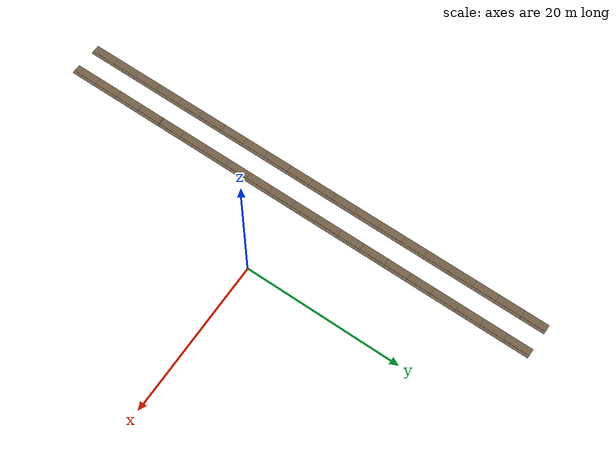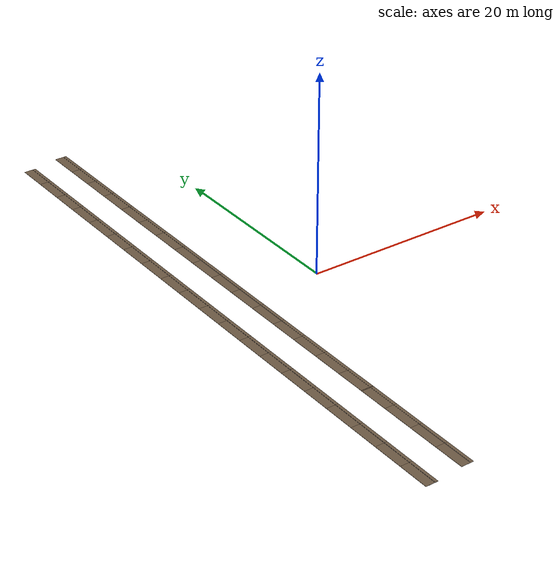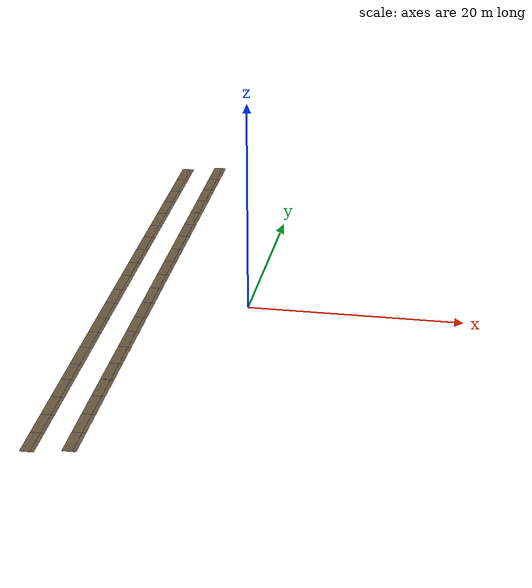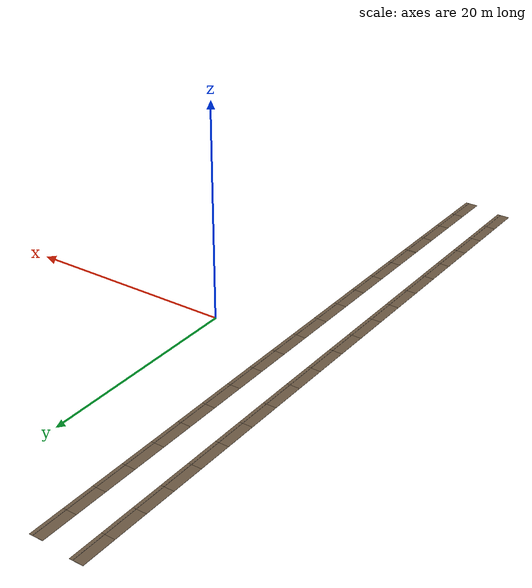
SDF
<sdf version="1.9">
 <world name="orchard_10x41">
  <model name="understory_r1">
   <static>true</static>
   <link name="link">
    <visual name="soil_1">
     <pose>-12.250 -29.450 0.925 0.0003 0.0000 0.0000</pose>
     <geometry><box><size>1.2000 3.2240 0.0300</size></box></geometry>
     <material>
      <ambient>0.400 0.330 0.250 1</ambient>
      <diffuse>0.440 0.363 0.275 1</diffuse>
      <specular>0.120 0.099 0.075 1</specular>
     </material>
     <plugin filename="gz-sim-label-system" name="gz::sim::systems::Label"><label>66</label></plugin>
    </visual>
    <visual name="soil_2">
     <pose>-12.250 -26.350 0.927 0.0007 0.0000 0.0000</pose>
     <geometry><box><size>1.2000 3.2240 0.0300</size></box></geometry>
     <material>
      <ambient>0.400 0.330 0.250 1</ambient>
      <diffuse>0.440 0.363 0.275 1</diffuse>
      <specular>0.120 0.099 0.075 1</specular>
     </material>
     <plugin filename="gz-sim-label-system" name="gz::sim::systems::Label"><label>66</label></plugin>
    </visual>
    <visual name="soil_3">
     <pose>-12.250 -23.250 0.929 0.0005 0.0000 0.0000</pose>
     <geometry><box><size>1.2000 3.2240 0.0300</size></box></geometry>
     <material>
      <ambient>0.400 0.330 0.250 1</ambient>
      <diffuse>0.440 0.363 0.275 1</diffuse>
      <specular>0.120 0.099 0.075 1</specular>
     </material>
     <plugin filename="gz-sim-label-system" name="gz::sim::systems::Label"><label>66</label></plugin>
    </visual>
    <visual name="soil_4">
     <pose>-12.250 -20.150 0.930 0.0001 0.0000 0.0000</pose>
     <geometry><box><size>1.2000 3.2240 0.0300</size></box></geometry>
     <material>
      <ambient>0.400 0.330 0.250 1</ambient>
      <diffuse>0.440 0.363 0.275 1</diffuse>
      <specular>0.120 0.099 0.075 1</specular>
     </material>
     <plugin filename="gz-sim-label-system" name="gz::sim::systems::Label"><label>66</label></plugin>
    </visual>
    <visual name="soil_5">
     <pose>-12.250 -17.050 0.930 0.0001 0.0000 0.0000</pose>
     <geometry><box><size>1.2000 3.2240 0.0300</size></box></geometry>
     <material>
      <ambient>0.400 0.330 0.250 1</ambient>
      <diffuse>0.440 0.363 0.275 1</diffuse>
      <specular>0.120 0.099 0.075 1</specular>
     </material>
     <plugin filename="gz-sim-label-system" name="gz::sim::systems::Label"><label>66</label></plugin>
    </visual>
    <visual name="soil_6">
     <pose>-12.250 -13.950 0.930 -0.0003 0.0000 0.0000</pose>
     <geometry><box><size>1.2000 3.2240 0.0300</size></box></geometry>
     <material>
      <ambient>0.400 0.330 0.250 1</ambient>
      <diffuse>0.440 0.363 0.275 1</diffuse>
      <specular>0.120 0.099 0.075 1</specular>
     </material>
     <plugin filename="gz-sim-label-system" name="gz::sim::systems::Label"><label>66</label></plugin>
    </visual>
    <visual name="soil_7">
     <pose>-12.250 -10.850 0.929 -0.0003 0.0000 0.0000</pose>
     <geometry><box><size>1.2000 3.2240 0.0300</size></box></geometry>
     <material>
      <ambient>0.400 0.330 0.250 1</ambient>
      <diffuse>0.440 0.363 0.275 1</diffuse>
      <specular>0.120 0.099 0.075 1</specular>
     </material>
     <plugin filename="gz-sim-label-system" name="gz::sim::systems::Label"><label>66</label></plugin>
    </visual>
    <visual name="soil_8">
     <pose>-12.250 -7.750 0.928 -0.0001 0.0000 0.0000</pose>
     <geometry><box><size>1.2000 3.2240 0.0300</size></box></geometry>
     <material>
      <ambient>0.400 0.330 0.250 1</ambient>
      <diffuse>0.440 0.363 0.275 1</diffuse>
      <specular>0.120 0.099 0.075 1</specular>
     </material>
     <plugin filename="gz-sim-label-system" name="gz::sim::systems::Label"><label>66</label></plugin>
    </visual>
    <visual name="soil_9">
     <pose>-12.250 -4.650 0.928 -0.0005 0.0000 0.0000</pose>
     <geometry><box><size>1.2000 3.2240 0.0300</size></box></geometry>
     <material>
      <ambient>0.400 0.330 0.250 1</ambient>
      <diffuse>0.440 0.363 0.275 1</diffuse>
      <specular>0.120 0.099 0.075 1</specular>
     </material>
     <plugin filename="gz-sim-label-system" name="gz::sim::systems::Label"><label>66</label></plugin>
    </visual>
    <visual name="soil_10">
     <pose>-12.250 -1.550 0.926 -0.0005 0.0000 0.0000</pose>
     <geometry><box><size>1.2000 3.2240 0.0300</size></box></geometry>
     <material>
      <ambient>0.400 0.330 0.250 1</ambient>
      <diffuse>0.440 0.363 0.275 1</diffuse>
      <specular>0.120 0.099 0.075 1</specular>
     </material>
     <plugin filename="gz-sim-label-system" name="gz::sim::systems::Label"><label>66</label></plugin>
    </visual>
    <visual name="soil_11">
     <pose>-12.250 1.550 0.925 -0.0002 0.0000 0.0000</pose>
     <geometry><box><size>1.2000 3.2240 0.0300</size></box></geometry>
     <material>
      <ambient>0.400 0.330 0.250 1</ambient>
      <diffuse>0.440 0.363 0.275 1</diffuse>
      <specular>0.120 0.099 0.075 1</specular>
     </material>
     <plugin filename="gz-sim-label-system" name="gz::sim::systems::Label"><label>66</label></plugin>
    </visual>
    <visual name="soil_12">
     <pose>-12.250 4.650 0.924 -0.0001 0.0000 0.0000</pose>
     <geometry><box><size>1.2000 3.2240 0.0300</size></box></geometry>
     <material>
      <ambient>0.400 0.330 0.250 1</ambient>
      <diffuse>0.440 0.363 0.275 1</diffuse>
      <specular>0.120 0.099 0.075 1</specular>
     </material>
     <plugin filename="gz-sim-label-system" name="gz::sim::systems::Label"><label>66</label></plugin>
    </visual>
    <visual name="soil_13">
     <pose>-12.250 7.750 0.924 -0.0001 0.0000 0.0000</pose>
     <geometry><box><size>1.2000 3.2240 0.0300</size></box></geometry>
     <material>
      <ambient>0.400 0.330 0.250 1</ambient>
      <diffuse>0.440 0.363 0.275 1</diffuse>
      <specular>0.120 0.099 0.075 1</specular>
     </material>
     <plugin filename="gz-sim-label-system" name="gz::sim::systems::Label"><label>66</label></plugin>
    </visual>
    <visual name="soil_14">
     <pose>-12.250 10.850 0.922 -0.0010 0.0000 0.0000</pose>
     <geometry><box><size>1.2000 3.2240 0.0300</size></box></geometry>
     <material>
      <ambient>0.400 0.330 0.250 1</ambient>
      <diffuse>0.440 0.363 0.275 1</diffuse>
      <specular>0.120 0.099 0.075 1</specular>
     </material>
     <plugin filename="gz-sim-label-system" name="gz::sim::systems::Label"><label>66</label></plugin>
    </visual>
    <visual name="soil_15">
     <pose>-12.250 13.950 0.918 -0.0015 0.0000 0.0000</pose>
     <geometry><box><size>1.2000 3.2240 0.0300</size></box></geometry>
     <material>
      <ambient>0.400 0.330 0.250 1</ambient>
      <diffuse>0.440 0.363 0.275 1</diffuse>
      <specular>0.120 0.099 0.075 1</specular>
     </material>
     <plugin filename="gz-sim-label-system" name="gz::sim::systems::Label"><label>66</label></plugin>
    </visual>
    <visual name="soil_16">
     <pose>-12.250 17.050 0.915 -0.0008 0.0000 0.0000</pose>
     <geometry><box><size>1.2000 3.2240 0.0300</size></box></geometry>
     <material>
      <ambient>0.400 0.330 0.250 1</ambient>
      <diffuse>0.440 0.363 0.275 1</diffuse>
      <specular>0.120 0.099 0.075 1</specular>
     </material>
     <plugin filename="gz-sim-label-system" name="gz::sim::systems::Label"><label>66</label></plugin>
    </visual>
    <visual name="soil_17">
     <pose>-12.250 20.150 0.913 -0.0001 0.0000 0.0000</pose>
     <geometry><box><size>1.2000 3.2240 0.0300</size></box></geometry>
     <material>
      <ambient>0.400 0.330 0.250 1</ambient>
      <diffuse>0.440 0.363 0.275 1</diffuse>
      <specular>0.120 0.099 0.075 1</specular>
     </material>
     <plugin filename="gz-sim-label-system" name="gz::sim::systems::Label"><label>66</label></plugin>
    </visual>
    <visual name="soil_18">
     <pose>-12.250 23.250 0.913 0.0003 0.0000 0.0000</pose>
     <geometry><box><size>1.2000 3.2240 0.0300</size></box></geometry>
     <material>
      <ambient>0.400 0.330 0.250 1</ambient>
      <diffuse>0.440 0.363 0.275 1</diffuse>
      <specular>0.120 0.099 0.075 1</specular>
     </material>
     <plugin filename="gz-sim-label-system" name="gz::sim::systems::Label"><label>66</label></plugin>
    </visual>
    <visual name="soil_19">
     <pose>-12.250 26.350 0.915 0.0006 0.0000 0.0000</pose>
     <geometry><box><size>1.2000 3.2240 0.0300</size></box></geometry>
     <material>
      <ambient>0.400 0.330 0.250 1</ambient>
      <diffuse>0.440 0.363 0.275 1</diffuse>
      <specular>0.120 0.099 0.075 1</specular>
     </material>
     <plugin filename="gz-sim-label-system" name="gz::sim::systems::Label"><label>66</label></plugin>
    </visual>
    <visual name="soil_20">
     <pose>-12.250 29.450 0.916 0.0001 0.0000 0.0000</pose>
     <geometry><box><size>1.2000 3.2240 0.0300</size></box></geometry>
     <material>
      <ambient>0.400 0.330 0.250 1</ambient>
      <diffuse>0.440 0.363 0.275 1</diffuse>
      <specular>0.120 0.099 0.075 1</specular>
     </material>
     <plugin filename="gz-sim-label-system" name="gz::sim::systems::Label"><label>66</label></plugin>
    </visual>
    <visual name="drip_21">
     <pose>-11.970 -29.450 0.955 1.5711 0.0000 0.0000</pose>
     <geometry><cylinder><radius>0.0110</radius><length>3.1620</length></cylinder></geometry>
     <material>
      <ambient>0.100 0.100 0.110 1</ambient>
      <diffuse>0.110 0.110 0.121 1</diffuse>
      <specular>0.030 0.030 0.033 1</specular>
     </material>
     <plugin filename="gz-sim-label-system" name="gz::sim::systems::Label"><label>67</label></plugin>
    </visual>
    <visual name="drip_22">
     <pose>-11.970 -26.350 0.957 1.5715 0.0000 0.0000</pose>
     <geometry><cylinder><radius>0.0110</radius><length>3.1620</length></cylinder></geometry>
     <material>
      <ambient>0.100 0.100 0.110 1</ambient>
      <diffuse>0.110 0.110 0.121 1</diffuse>
      <specular>0.030 0.030 0.033 1</specular>
     </material>
     <plugin filename="gz-sim-label-system" name="gz::sim::systems::Label"><label>67</label></plugin>
    </visual>
    <visual name="drip_23">
     <pose>-11.970 -23.250 0.959 1.5713 0.0000 0.0000</pose>
     <geometry><cylinder><radius>0.0110</radius><length>3.1620</length></cylinder></geometry>
     <material>
      <ambient>0.100 0.100 0.110 1</ambient>
      <diffuse>0.110 0.110 0.121 1</diffuse>
      <specular>0.030 0.030 0.033 1</specular>
     </material>
     <plugin filename="gz-sim-label-system" name="gz::sim::systems::Label"><label>67</label></plugin>
    </visual>
    <visual name="drip_24">
     <pose>-11.970 -20.150 0.960 1.5709 0.0000 0.0000</pose>
     <geometry><cylinder><radius>0.0110</radius><length>3.1620</length></cylinder></geometry>
     <material>
      <ambient>0.100 0.100 0.110 1</ambient>
      <diffuse>0.110 0.110 0.121 1</diffuse>
      <specular>0.030 0.030 0.033 1</specular>
     </material>
     <plugin filename="gz-sim-label-system" name="gz::sim::systems::Label"><label>67</label></plugin>
    </visual>
    <visual name="drip_25">
     <pose>-11.970 -17.050 0.960 1.5709 0.0000 0.0000</pose>
     <geometry><cylinder><radius>0.0110</radius><length>3.1620</length></cylinder></geometry>
     <material>
      <ambient>0.100 0.100 0.110 1</ambient>
      <diffuse>0.110 0.110 0.121 1</diffuse>
      <specular>0.030 0.030 0.033 1</specular>
     </material>
     <plugin filename="gz-sim-label-system" name="gz::sim::systems::Label"><label>67</label></plugin>
    </visual>
    <visual name="drip_26">
     <pose>-11.970 -13.950 0.960 1.5705 0.0000 0.0000</pose>
     <geometry><cylinder><radius>0.0110</radius><length>3.1620</length></cylinder></geometry>
     <material>
      <ambient>0.100 0.100 0.110 1</ambient>
      <diffuse>0.110 0.110 0.121 1</diffuse>
      <specular>0.030 0.030 0.033 1</specular>
     </material>
     <plugin filename="gz-sim-label-system" name="gz::sim::systems::Label"><label>67</label></plugin>
    </visual>
    <visual name="drip_27">
     <pose>-11.970 -10.850 0.959 1.5705 0.0000 0.0000</pose>
     <geometry><cylinder><radius>0.0110</radius><length>3.1620</length></cylinder></geometry>
     <material>
      <ambient>0.100 0.100 0.110 1</ambient>
      <diffuse>0.110 0.110 0.121 1</diffuse>
      <specular>0.030 0.030 0.033 1</specular>
     </material>
     <plugin filename="gz-sim-label-system" name="gz::sim::systems::Label"><label>67</label></plugin>
    </visual>
    <visual name="drip_28">
     <pose>-11.970 -7.750 0.958 1.5707 0.0000 0.0000</pose>
     <geometry><cylinder><radius>0.0110</radius><length>3.1620</length></cylinder></geometry>
     <material>
      <ambient>0.100 0.100 0.110 1</ambient>
      <diffuse>0.110 0.110 0.121 1</diffuse>
      <specular>0.030 0.030 0.033 1</specular>
     </material>
     <plugin filename="gz-sim-label-system" name="gz::sim::systems::Label"><label>67</label></plugin>
    </visual>
    <visual name="drip_29">
     <pose>-11.970 -4.650 0.958 1.5703 0.0000 0.0000</pose>
     <geometry><cylinder><radius>0.0110</radius><length>3.1620</length></cylinder></geometry>
     <material>
      <ambient>0.100 0.100 0.110 1</ambient>
      <diffuse>0.110 0.110 0.121 1</diffuse>
      <specular>0.030 0.030 0.033 1</specular>
     </material>
     <plugin filename="gz-sim-label-system" name="gz::sim::systems::Label"><label>67</label></plugin>
    </visual>
    <visual name="drip_30">
     <pose>-11.970 -1.550 0.956 1.5703 0.0000 0.0000</pose>
     <geometry><cylinder><radius>0.0110</radius><length>3.1620</length></cylinder></geometry>
     <material>
      <ambient>0.100 0.100 0.110 1</ambient>
      <diffuse>0.110 0.110 0.121 1</diffuse>
      <specular>0.030 0.030 0.033 1</specular>
     </material>
     <plugin filename="gz-sim-label-system" name="gz::sim::systems::Label"><label>67</label></plugin>
    </visual>
    <visual name="drip_31">
     <pose>-11.970 1.550 0.955 1.5706 0.0000 0.0000</pose>
     <geometry><cylinder><radius>0.0110</radius><length>3.1620</length></cylinder></geometry>
     <material>
      <ambient>0.100 0.100 0.110 1</ambient>
      <diffuse>0.110 0.110 0.121 1</diffuse>
      <specular>0.030 0.030 0.033 1</specular>
     </material>
     <plugin filename="gz-sim-label-system" name="gz::sim::systems::Label"><label>67</label></plugin>
    </visual>
    <visual name="drip_32">
     <pose>-11.970 4.650 0.954 1.5707 0.0000 0.0000</pose>
     <geometry><cylinder><radius>0.0110</radius><length>3.1620</length></cylinder></geometry>
     <material>
      <ambient>0.100 0.100 0.110 1</ambient>
      <diffuse>0.110 0.110 0.121 1</diffuse>
      <specular>0.030 0.030 0.033 1</specular>
     </material>
     <plugin filename="gz-sim-label-system" name="gz::sim::systems::Label"><label>67</label></plugin>
    </visual>
    <visual name="drip_33">
     <pose>-11.970 7.750 0.954 1.5707 0.0000 0.0000</pose>
     <geometry><cylinder><radius>0.0110</radius><length>3.1620</length></cylinder></geometry>
     <material>
      <ambient>0.100 0.100 0.110 1</ambient>
      <diffuse>0.110 0.110 0.121 1</diffuse>
      <specular>0.030 0.030 0.033 1</specular>
     </material>
     <plugin filename="gz-sim-label-system" name="gz::sim::systems::Label"><label>67</label></plugin>
    </visual>
    <visual name="drip_34">
     <pose>-11.970 10.850 0.952 1.5698 0.0000 0.0000</pose>
     <geometry><cylinder><radius>0.0110</radius><length>3.1620</length></cylinder></geometry>
     <material>
      <ambient>0.100 0.100 0.110 1</ambient>
      <diffuse>0.110 0.110 0.121 1</diffuse>
      <specular>0.030 0.030 0.033 1</specular>
     </material>
     <plugin filename="gz-sim-label-system" name="gz::sim::systems::Label"><label>67</label></plugin>
    </visual>
    <visual name="drip_35">
     <pose>-11.970 13.950 0.948 1.5693 0.0000 0.0000</pose>
     <geometry><cylinder><radius>0.0110</radius><length>3.1620</length></cylinder></geometry>
     <material>
      <ambient>0.100 0.100 0.110 1</ambient>
      <diffuse>0.110 0.110 0.121 1</diffuse>
      <specular>0.030 0.030 0.033 1</specular>
     </material>
     <plugin filename="gz-sim-label-system" name="gz::sim::systems::Label"><label>67</label></plugin>
    </visual>
    <visual name="drip_36">
     <pose>-11.970 17.050 0.945 1.5700 0.0000 0.0000</pose>
     <geometry><cylinder><radius>0.0110</radius><length>3.1620</length></cylinder></geometry>
     <material>
      <ambient>0.100 0.100 0.110 1</ambient>
      <diffuse>0.110 0.110 0.121 1</diffuse>
      <specular>0.030 0.030 0.033 1</specular>
     </material>
     <plugin filename="gz-sim-label-system" name="gz::sim::systems::Label"><label>67</label></plugin>
    </visual>
    <visual name="drip_37">
     <pose>-11.970 20.150 0.943 1.5707 0.0000 0.0000</pose>
     <geometry><cylinder><radius>0.0110</radius><length>3.1620</length></cylinder></geometry>
     <material>
      <ambient>0.100 0.100 0.110 1</ambient>
      <diffuse>0.110 0.110 0.121 1</diffuse>
      <specular>0.030 0.030 0.033 1</specular>
     </material>
     <plugin filename="gz-sim-label-system" name="gz::sim::systems::Label"><label>67</label></plugin>
    </visual>
    <visual name="drip_38">
     <pose>-11.970 23.250 0.943 1.5711 0.0000 0.0000</pose>
     <geometry><cylinder><radius>0.0110</radius><length>3.1620</length></cylinder></geometry>
     <material>
      <ambient>0.100 0.100 0.110 1</ambient>
      <diffuse>0.110 0.110 0.121 1</diffuse>
      <specular>0.030 0.030 0.033 1</specular>
     </material>
     <plugin filename="gz-sim-label-system" name="gz::sim::systems::Label"><label>67</label></plugin>
    </visual>
    <visual name="drip_39">
     <pose>-11.970 26.350 0.945 1.5714 0.0000 0.0000</pose>
     <geometry><cylinder><radius>0.0110</radius><length>3.1620</length></cylinder></geometry>
     <material>
      <ambient>0.100 0.100 0.110 1</ambient>
      <diffuse>0.110 0.110 0.121 1</diffuse>
      <specular>0.030 0.030 0.033 1</specular>
     </material>
     <plugin filename="gz-sim-label-system" name="gz::sim::systems::Label"><label>67</label></plugin>
    </visual>
    <visual name="drip_40">
     <pose>-11.970 29.450 0.946 1.5709 0.0000 0.0000</pose>
     <geometry><cylinder><radius>0.0110</radius><length>3.1620</length></cylinder></geometry>
     <material>
      <ambient>0.100 0.100 0.110 1</ambient>
      <diffuse>0.110 0.110 0.121 1</diffuse>
      <specular>0.030 0.030 0.033 1</specular>
     </material>
     <plugin filename="gz-sim-label-system" name="gz::sim::systems::Label"><label>67</label></plugin>
    </visual>
   </link>
  </model>
  <model name="understory_r2">
   <static>true</static>
   <link name="link">
    <visual name="soil_1">
     <pose>-8.750 -29.450 1.279 0.0003 0.0000 0.0000</pose>
     <geometry><box><size>1.2000 3.2240 0.0300</size></box></geometry>
     <material>
      <ambient>0.400 0.330 0.250 1</ambient>
      <diffuse>0.440 0.363 0.275 1</diffuse>
      <specular>0.120 0.099 0.075 1</specular>
     </material>
     <plugin filename="gz-sim-label-system" name="gz::sim::systems::Label"><label>66</label></plugin>
    </visual>
    <visual name="soil_2">
     <pose>-8.750 -26.350 1.281 0.0009 0.0000 0.0000</pose>
     <geometry><box><size>1.2000 3.2240 0.0300</size></box></geometry>
     <material>
      <ambient>0.400 0.330 0.250 1</ambient>
      <diffuse>0.440 0.363 0.275 1</diffuse>
      <specular>0.120 0.099 0.075 1</specular>
     </material>
     <plugin filename="gz-sim-label-system" name="gz::sim::systems::Label"><label>66</label></plugin>
    </visual>
    <visual name="soil_3">
     <pose>-8.750 -23.250 1.284 0.0006 0.0000 0.0000</pose>
     <geometry><box><size>1.2000 3.2240 0.0300</size></box></geometry>
     <material>
      <ambient>0.400 0.330 0.250 1</ambient>
      <diffuse>0.440 0.363 0.275 1</diffuse>
      <specular>0.120 0.099 0.075 1</specular>
     </material>
     <plugin filename="gz-sim-label-system" name="gz::sim::systems::Label"><label>66</label></plugin>
    </visual>
    <visual name="soil_4">
     <pose>-8.750 -20.150 1.285 0.0001 0.0000 0.0000</pose>
     <geometry><box><size>1.2000 3.2240 0.0300</size></box></geometry>
     <material>
      <ambient>0.400 0.330 0.250 1</ambient>
      <diffuse>0.440 0.363 0.275 1</diffuse>
      <specular>0.120 0.099 0.075 1</specular>
     </material>
     <plugin filename="gz-sim-label-system" name="gz::sim::systems::Label"><label>66</label></plugin>
    </visual>
    <visual name="soil_5">
     <pose>-8.750 -17.050 1.285 -0.0001 0.0000 0.0000</pose>
     <geometry><box><size>1.2000 3.2240 0.0300</size></box></geometry>
     <material>
      <ambient>0.400 0.330 0.250 1</ambient>
      <diffuse>0.440 0.363 0.275 1</diffuse>
      <specular>0.120 0.099 0.075 1</specular>
     </material>
     <plugin filename="gz-sim-label-system" name="gz::sim::systems::Label"><label>66</label></plugin>
    </visual>
    <visual name="soil_6">
     <pose>-8.750 -13.950 1.285 -0.0001 0.0000 0.0000</pose>
     <geometry><box><size>1.2000 3.2240 0.0300</size></box></geometry>
     <material>
      <ambient>0.400 0.330 0.250 1</ambient>
      <diffuse>0.440 0.363 0.275 1</diffuse>
      <specular>0.120 0.099 0.075 1</specular>
     </material>
     <plugin filename="gz-sim-label-system" name="gz::sim::systems::Label"><label>66</label></plugin>
    </visual>
    <visual name="soil_7">
     <pose>-8.750 -10.850 1.284 -0.0002 0.0000 0.0000</pose>
     <geometry><box><size>1.2000 3.2240 0.0300</size></box></geometry>
     <material>
      <ambient>0.400 0.330 0.250 1</ambient>
      <diffuse>0.440 0.363 0.275 1</diffuse>
      <specular>0.120 0.099 0.075 1</specular>
     </material>
     <plugin filename="gz-sim-label-system" name="gz::sim::systems::Label"><label>66</label></plugin>
    </visual>
    <visual name="soil_8">
     <pose>-8.750 -7.750 1.283 -0.0003 0.0000 0.0000</pose>
     <geometry><box><size>1.2000 3.2240 0.0300</size></box></geometry>
     <material>
      <ambient>0.400 0.330 0.250 1</ambient>
      <diffuse>0.440 0.363 0.275 1</diffuse>
      <specular>0.120 0.099 0.075 1</specular>
     </material>
     <plugin filename="gz-sim-label-system" name="gz::sim::systems::Label"><label>66</label></plugin>
    </visual>
    <visual name="soil_9">
     <pose>-8.750 -4.650 1.282 -0.0005 0.0000 0.0000</pose>
     <geometry><box><size>1.2000 3.2240 0.0300</size></box></geometry>
     <material>
      <ambient>0.400 0.330 0.250 1</ambient>
      <diffuse>0.440 0.363 0.275 1</diffuse>
      <specular>0.120 0.099 0.075 1</specular>
     </material>
     <plugin filename="gz-sim-label-system" name="gz::sim::systems::Label"><label>66</label></plugin>
    </visual>
    <visual name="soil_10">
     <pose>-8.750 -1.550 1.281 -0.0004 0.0000 0.0000</pose>
     <geometry><box><size>1.2000 3.2240 0.0300</size></box></geometry>
     <material>
      <ambient>0.400 0.330 0.250 1</ambient>
      <diffuse>0.440 0.363 0.275 1</diffuse>
      <specular>0.120 0.099 0.075 1</specular>
     </material>
     <plugin filename="gz-sim-label-system" name="gz::sim::systems::Label"><label>66</label></plugin>
    </visual>
    <visual name="soil_11">
     <pose>-8.750 1.550 1.280 0.0001 0.0000 0.0000</pose>
     <geometry><box><size>1.2000 3.2240 0.0300</size></box></geometry>
     <material>
      <ambient>0.400 0.330 0.250 1</ambient>
      <diffuse>0.440 0.363 0.275 1</diffuse>
      <specular>0.120 0.099 0.075 1</specular>
     </material>
     <plugin filename="gz-sim-label-system" name="gz::sim::systems::Label"><label>66</label></plugin>
    </visual>
    <visual name="soil_12">
     <pose>-8.750 4.650 1.280 -0.0000 0.0000 0.0000</pose>
     <geometry><box><size>1.2000 3.2240 0.0300</size></box></geometry>
     <material>
      <ambient>0.400 0.330 0.250 1</ambient>
      <diffuse>0.440 0.363 0.275 1</diffuse>
      <specular>0.120 0.099 0.075 1</specular>
     </material>
     <plugin filename="gz-sim-label-system" name="gz::sim::systems::Label"><label>66</label></plugin>
    </visual>
    <visual name="soil_13">
     <pose>-8.750 7.750 1.279 -0.0006 0.0000 0.0000</pose>
     <geometry><box><size>1.2000 3.2240 0.0300</size></box></geometry>
     <material>
      <ambient>0.400 0.330 0.250 1</ambient>
      <diffuse>0.440 0.363 0.275 1</diffuse>
      <specular>0.120 0.099 0.075 1</specular>
     </material>
     <plugin filename="gz-sim-label-system" name="gz::sim::systems::Label"><label>66</label></plugin>
    </visual>
    <visual name="soil_14">
     <pose>-8.750 10.850 1.277 -0.0011 0.0000 0.0000</pose>
     <geometry><box><size>1.2000 3.2240 0.0300</size></box></geometry>
     <material>
      <ambient>0.400 0.330 0.250 1</ambient>
      <diffuse>0.440 0.363 0.275 1</diffuse>
      <specular>0.120 0.099 0.075 1</specular>
     </material>
     <plugin filename="gz-sim-label-system" name="gz::sim::systems::Label"><label>66</label></plugin>
    </visual>
    <visual name="soil_15">
     <pose>-8.750 13.950 1.272 -0.0016 0.0000 0.0000</pose>
     <geometry><box><size>1.2000 3.2240 0.0300</size></box></geometry>
     <material>
      <ambient>0.400 0.330 0.250 1</ambient>
      <diffuse>0.440 0.363 0.275 1</diffuse>
      <specular>0.120 0.099 0.075 1</specular>
     </material>
     <plugin filename="gz-sim-label-system" name="gz::sim::systems::Label"><label>66</label></plugin>
    </visual>
    <visual name="soil_16">
     <pose>-8.750 17.050 1.269 -0.0005 0.0000 0.0000</pose>
     <geometry><box><size>1.2000 3.2240 0.0300</size></box></geometry>
     <material>
      <ambient>0.400 0.330 0.250 1</ambient>
      <diffuse>0.440 0.363 0.275 1</diffuse>
      <specular>0.120 0.099 0.075 1</specular>
     </material>
     <plugin filename="gz-sim-label-system" name="gz::sim::systems::Label"><label>66</label></plugin>
    </visual>
    <visual name="soil_17">
     <pose>-8.750 20.150 1.269 -0.0000 0.0000 0.0000</pose>
     <geometry><box><size>1.2000 3.2240 0.0300</size></box></geometry>
     <material>
      <ambient>0.400 0.330 0.250 1</ambient>
      <diffuse>0.440 0.363 0.275 1</diffuse>
      <specular>0.120 0.099 0.075 1</specular>
     </material>
     <plugin filename="gz-sim-label-system" name="gz::sim::systems::Label"><label>66</label></plugin>
    </visual>
    <visual name="soil_18">
     <pose>-8.750 23.250 1.269 0.0001 0.0000 0.0000</pose>
     <geometry><box><size>1.2000 3.2240 0.0300</size></box></geometry>
     <material>
      <ambient>0.400 0.330 0.250 1</ambient>
      <diffuse>0.440 0.363 0.275 1</diffuse>
      <specular>0.120 0.099 0.075 1</specular>
     </material>
     <plugin filename="gz-sim-label-system" name="gz::sim::systems::Label"><label>66</label></plugin>
    </visual>
    <visual name="soil_19">
     <pose>-8.750 26.350 1.270 0.0008 0.0000 0.0000</pose>
     <geometry><box><size>1.2000 3.2240 0.0300</size></box></geometry>
     <material>
      <ambient>0.400 0.330 0.250 1</ambient>
      <diffuse>0.440 0.363 0.275 1</diffuse>
      <specular>0.120 0.099 0.075 1</specular>
     </material>
     <plugin filename="gz-sim-label-system" name="gz::sim::systems::Label"><label>66</label></plugin>
    </visual>
    <visual name="soil_20">
     <pose>-8.750 29.450 1.272 0.0004 0.0000 0.0000</pose>
     <geometry><box><size>1.2000 3.2240 0.0300</size></box></geometry>
     <material>
      <ambient>0.400 0.330 0.250 1</ambient>
      <diffuse>0.440 0.363 0.275 1</diffuse>
      <specular>0.120 0.099 0.075 1</specular>
     </material>
     <plugin filename="gz-sim-label-system" name="gz::sim::systems::Label"><label>66</label></plugin>
    </visual>
    <visual name="drip_21">
     <pose>-8.470 -29.450 1.309 1.5711 0.0000 0.0000</pose>
     <geometry><cylinder><radius>0.0110</radius><length>3.1620</length></cylinder></geometry>
     <material>
      <ambient>0.100 0.100 0.110 1</ambient>
      <diffuse>0.110 0.110 0.121 1</diffuse>
      <specular>0.030 0.030 0.033 1</specular>
     </material>
     <plugin filename="gz-sim-label-system" name="gz::sim::systems::Label"><label>67</label></plugin>
    </visual>
    <visual name="drip_22">
     <pose>-8.470 -26.350 1.311 1.5717 0.0000 0.0000</pose>
     <geometry><cylinder><radius>0.0110</radius><length>3.1620</length></cylinder></geometry>
     <material>
      <ambient>0.100 0.100 0.110 1</ambient>
      <diffuse>0.110 0.110 0.121 1</diffuse>
      <specular>0.030 0.030 0.033 1</specular>
     </material>
     <plugin filename="gz-sim-label-system" name="gz::sim::systems::Label"><label>67</label></plugin>
    </visual>
    <visual name="drip_23">
     <pose>-8.470 -23.250 1.314 1.5714 0.0000 0.0000</pose>
     <geometry><cylinder><radius>0.0110</radius><length>3.1620</length></cylinder></geometry>
     <material>
      <ambient>0.100 0.100 0.110 1</ambient>
      <diffuse>0.110 0.110 0.121 1</diffuse>
      <specular>0.030 0.030 0.033 1</specular>
     </material>
     <plugin filename="gz-sim-label-system" name="gz::sim::systems::Label"><label>67</label></plugin>
    </visual>
    <visual name="drip_24">
     <pose>-8.470 -20.150 1.315 1.5709 0.0000 0.0000</pose>
     <geometry><cylinder><radius>0.0110</radius><length>3.1620</length></cylinder></geometry>
     <material>
      <ambient>0.100 0.100 0.110 1</ambient>
      <diffuse>0.110 0.110 0.121 1</diffuse>
      <specular>0.030 0.030 0.033 1</specular>
     </material>
     <plugin filename="gz-sim-label-system" name="gz::sim::systems::Label"><label>67</label></plugin>
    </visual>
    <visual name="drip_25">
     <pose>-8.470 -17.050 1.315 1.5707 0.0000 0.0000</pose>
     <geometry><cylinder><radius>0.0110</radius><length>3.1620</length></cylinder></geometry>
     <material>
      <ambient>0.100 0.100 0.110 1</ambient>
      <diffuse>0.110 0.110 0.121 1</diffuse>
      <specular>0.030 0.030 0.033 1</specular>
     </material>
     <plugin filename="gz-sim-label-system" name="gz::sim::systems::Label"><label>67</label></plugin>
    </visual>
    <visual name="drip_26">
     <pose>-8.470 -13.950 1.315 1.5707 0.0000 0.0000</pose>
     <geometry><cylinder><radius>0.0110</radius><length>3.1620</length></cylinder></geometry>
     <material>
      <ambient>0.100 0.100 0.110 1</ambient>
      <diffuse>0.110 0.110 0.121 1</diffuse>
      <specular>0.030 0.030 0.033 1</specular>
     </material>
     <plugin filename="gz-sim-label-system" name="gz::sim::systems::Label"><label>67</label></plugin>
    </visual>
    <visual name="drip_27">
     <pose>-8.470 -10.850 1.314 1.5706 0.0000 0.0000</pose>
     <geometry><cylinder><radius>0.0110</radius><length>3.1620</length></cylinder></geometry>
     <material>
      <ambient>0.100 0.100 0.110 1</ambient>
      <diffuse>0.110 0.110 0.121 1</diffuse>
      <specular>0.030 0.030 0.033 1</specular>
     </material>
     <plugin filename="gz-sim-label-system" name="gz::sim::systems::Label"><label>67</label></plugin>
    </visual>
    <visual name="drip_28">
     <pose>-8.470 -7.750 1.313 1.5705 0.0000 0.0000</pose>
     <geometry><cylinder><radius>0.0110</radius><length>3.1620</length></cylinder></geometry>
     <material>
      <ambient>0.100 0.100 0.110 1</ambient>
      <diffuse>0.110 0.110 0.121 1</diffuse>
      <specular>0.030 0.030 0.033 1</specular>
     </material>
     <plugin filename="gz-sim-label-system" name="gz::sim::systems::Label"><label>67</label></plugin>
    </visual>
    <visual name="drip_29">
     <pose>-8.470 -4.650 1.312 1.5703 0.0000 0.0000</pose>
     <geometry><cylinder><radius>0.0110</radius><length>3.1620</length></cylinder></geometry>
     <material>
      <ambient>0.100 0.100 0.110 1</ambient>
      <diffuse>0.110 0.110 0.121 1</diffuse>
      <specular>0.030 0.030 0.033 1</specular>
     </material>
     <plugin filename="gz-sim-label-system" name="gz::sim::systems::Label"><label>67</label></plugin>
    </visual>
    <visual name="drip_30">
     <pose>-8.470 -1.550 1.311 1.5704 0.0000 0.0000</pose>
     <geometry><cylinder><radius>0.0110</radius><length>3.1620</length></cylinder></geometry>
     <material>
      <ambient>0.100 0.100 0.110 1</ambient>
      <diffuse>0.110 0.110 0.121 1</diffuse>
      <specular>0.030 0.030 0.033 1</specular>
     </material>
     <plugin filename="gz-sim-label-system" name="gz::sim::systems::Label"><label>67</label></plugin>
    </visual>
    <visual name="drip_31">
     <pose>-8.470 1.550 1.310 1.5709 0.0000 0.0000</pose>
     <geometry><cylinder><radius>0.0110</radius><length>3.1620</length></cylinder></geometry>
     <material>
      <ambient>0.100 0.100 0.110 1</ambient>
      <diffuse>0.110 0.110 0.121 1</diffuse>
      <specular>0.030 0.030 0.033 1</specular>
     </material>
     <plugin filename="gz-sim-label-system" name="gz::sim::systems::Label"><label>67</label></plugin>
    </visual>
    <visual name="drip_32">
     <pose>-8.470 4.650 1.310 1.5708 0.0000 0.0000</pose>
     <geometry><cylinder><radius>0.0110</radius><length>3.1620</length></cylinder></geometry>
     <material>
      <ambient>0.100 0.100 0.110 1</ambient>
      <diffuse>0.110 0.110 0.121 1</diffuse>
      <specular>0.030 0.030 0.033 1</specular>
     </material>
     <plugin filename="gz-sim-label-system" name="gz::sim::systems::Label"><label>67</label></plugin>
    </visual>
    <visual name="drip_33">
     <pose>-8.470 7.750 1.309 1.5702 0.0000 0.0000</pose>
     <geometry><cylinder><radius>0.0110</radius><length>3.1620</length></cylinder></geometry>
     <material>
      <ambient>0.100 0.100 0.110 1</ambient>
      <diffuse>0.110 0.110 0.121 1</diffuse>
      <specular>0.030 0.030 0.033 1</specular>
     </material>
     <plugin filename="gz-sim-label-system" name="gz::sim::systems::Label"><label>67</label></plugin>
    </visual>
    <visual name="drip_34">
     <pose>-8.470 10.850 1.307 1.5697 0.0000 0.0000</pose>
     <geometry><cylinder><radius>0.0110</radius><length>3.1620</length></cylinder></geometry>
     <material>
      <ambient>0.100 0.100 0.110 1</ambient>
      <diffuse>0.110 0.110 0.121 1</diffuse>
      <specular>0.030 0.030 0.033 1</specular>
     </material>
     <plugin filename="gz-sim-label-system" name="gz::sim::systems::Label"><label>67</label></plugin>
    </visual>
    <visual name="drip_35">
     <pose>-8.470 13.950 1.302 1.5692 0.0000 0.0000</pose>
     <geometry><cylinder><radius>0.0110</radius><length>3.1620</length></cylinder></geometry>
     <material>
      <ambient>0.100 0.100 0.110 1</ambient>
      <diffuse>0.110 0.110 0.121 1</diffuse>
      <specular>0.030 0.030 0.033 1</specular>
     </material>
     <plugin filename="gz-sim-label-system" name="gz::sim::systems::Label"><label>67</label></plugin>
    </visual>
    <visual name="drip_36">
     <pose>-8.470 17.050 1.299 1.5703 0.0000 0.0000</pose>
     <geometry><cylinder><radius>0.0110</radius><length>3.1620</length></cylinder></geometry>
     <material>
      <ambient>0.100 0.100 0.110 1</ambient>
      <diffuse>0.110 0.110 0.121 1</diffuse>
      <specular>0.030 0.030 0.033 1</specular>
     </material>
     <plugin filename="gz-sim-label-system" name="gz::sim::systems::Label"><label>67</label></plugin>
    </visual>
    <visual name="drip_37">
     <pose>-8.470 20.150 1.299 1.5708 0.0000 0.0000</pose>
     <geometry><cylinder><radius>0.0110</radius><length>3.1620</length></cylinder></geometry>
     <material>
      <ambient>0.100 0.100 0.110 1</ambient>
      <diffuse>0.110 0.110 0.121 1</diffuse>
      <specular>0.030 0.030 0.033 1</specular>
     </material>
     <plugin filename="gz-sim-label-system" name="gz::sim::systems::Label"><label>67</label></plugin>
    </visual>
    <visual name="drip_38">
     <pose>-8.470 23.250 1.299 1.5709 0.0000 0.0000</pose>
     <geometry><cylinder><radius>0.0110</radius><length>3.1620</length></cylinder></geometry>
     <material>
      <ambient>0.100 0.100 0.110 1</ambient>
      <diffuse>0.110 0.110 0.121 1</diffuse>
      <specular>0.030 0.030 0.033 1</specular>
     </material>
     <plugin filename="gz-sim-label-system" name="gz::sim::systems::Label"><label>67</label></plugin>
    </visual>
    <visual name="drip_39">
     <pose>-8.470 26.350 1.300 1.5716 0.0000 0.0000</pose>
     <geometry><cylinder><radius>0.0110</radius><length>3.1620</length></cylinder></geometry>
     <material>
      <ambient>0.100 0.100 0.110 1</ambient>
      <diffuse>0.110 0.110 0.121 1</diffuse>
      <specular>0.030 0.030 0.033 1</specular>
     </material>
     <plugin filename="gz-sim-label-system" name="gz::sim::systems::Label"><label>67</label></plugin>
    </visual>
    <visual name="drip_40">
     <pose>-8.470 29.450 1.302 1.5712 0.0000 0.0000</pose>
     <geometry><cylinder><radius>0.0110</radius><length>3.1620</length></cylinder></geometry>
     <material>
      <ambient>0.100 0.100 0.110 1</ambient>
      <diffuse>0.110 0.110 0.121 1</diffuse>
      <specular>0.030 0.030 0.033 1</specular>
     </material>
     <plugin filename="gz-sim-label-system" name="gz::sim::systems::Label"><label>67</label></plugin>
    </visual>
   </link>
  </model>
 </world>
</sdf>
